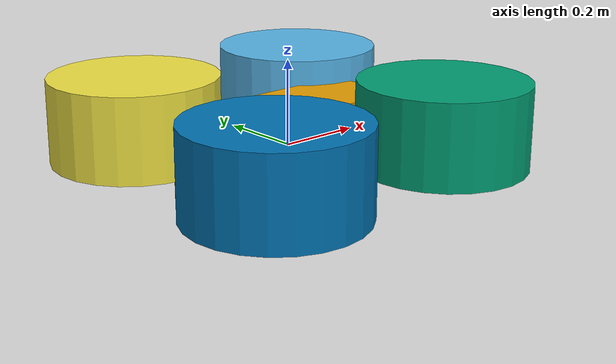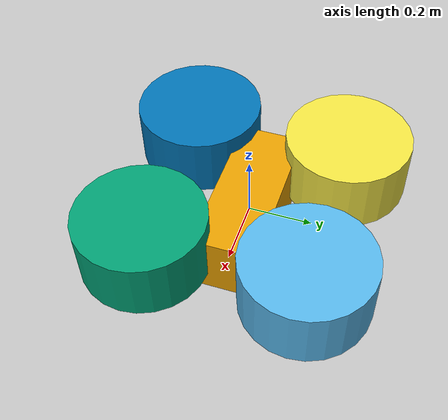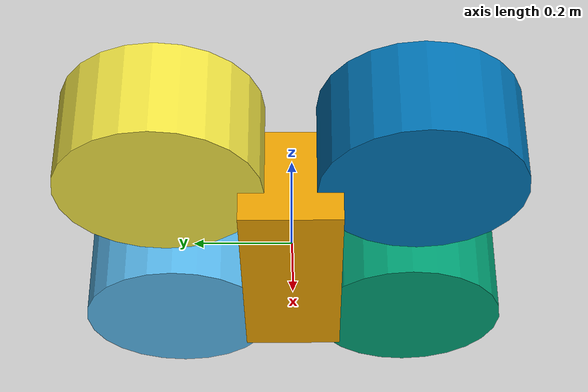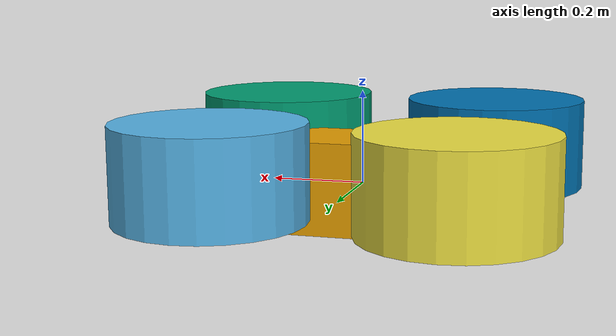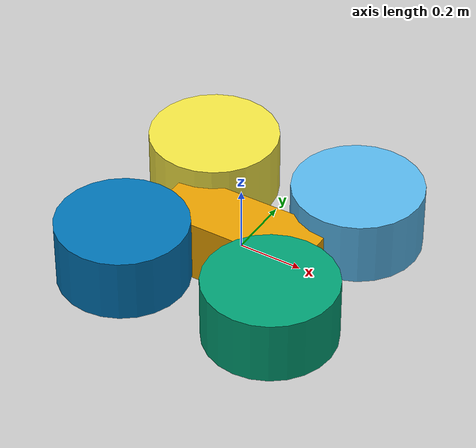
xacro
<?xml version="1.0"?>

<robot xmlns:xacro="http://www.ros.org/wiki/xacro" name="drone">

    <xacro:property name="length" value="0.2"/>
    <xacro:property name="radius" value="0.2"/>

    <link name="body_link">
        <visual>
            <geometry>
                <box size="0.5 0.2 0.2"/>
            </geometry>
        </visual>

        <collision>
            <geometry>
                <box size="0.5 0.2 0.2"/>
            </geometry>
        </collision>
    </link>

    <link name="top_left_rotor">
        <visual>
            <geometry>
                <cylinder length="${length}" radius="${radius}"/>
            </geometry>
        </visual>

        <collision>
            <geometry>
                <cylinder length="${length}" radius="${radius}"/>
            </geometry>
        </collision>
    </link>

    <link name="top_right_rotor">
        <visual>
            <geometry>
                <cylinder length="${length}" radius="${radius}"/>
            </geometry>
        </visual>

        <collision>
            <geometry>
                <cylinder length="${length}" radius="${radius}"/>
            </geometry>
        </collision>
    </link>

    <link name="bot_left_rotor">
        <visual>
            <geometry>
                <cylinder length="${length}" radius="${radius}"/>
            </geometry>
        </visual>

        <collision>
            <geometry>
                <cylinder length="${length}" radius="${radius}"/>
            </geometry>
        </collision>
    </link>

    <link name="bot_right_rotor">
        <visual>
            <geometry>
                <cylinder length="${length}" radius="${radius}"/>
            </geometry>
        </visual>

        <collision>
            <geometry>
                <cylinder length="${length}" radius="${radius}"/>
            </geometry>
        </collision>
    </link>

    <joint name="body_to_tlr" type="fixed">
        <parent link="body_link"/>
        <child link="top_left_rotor"/>
        <origin xyz="0.25 0.25 0.06" rpy="0 0 0"/>
    </joint>

    <joint name="body_to_trr" type="fixed">
        <parent link="body_link"/>
        <child link="top_right_rotor"/>
        <origin xyz="0.25 -0.25 0.06" rpy="0 0 0"/>
    </joint>

    <joint name="body_to_blr" type="fixed">
        <parent link="body_link"/>
        <child link="bot_left_rotor"/>
        <origin xyz="-0.25 0.25 0.06" rpy="0 0 0"/>
    </joint>

    <joint name="body_to_brr" type="fixed">
        <parent link="body_link"/>
        <child link="bot_right_rotor"/>
        <origin xyz="-0.25 -0.25 0.06" rpy="0 0 0"/>
    </joint>
</robot>
